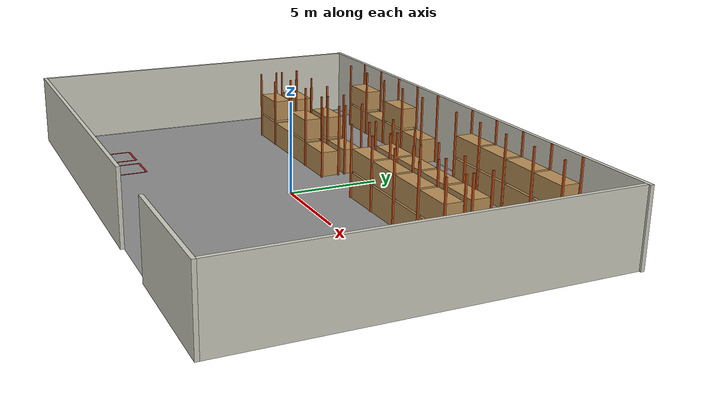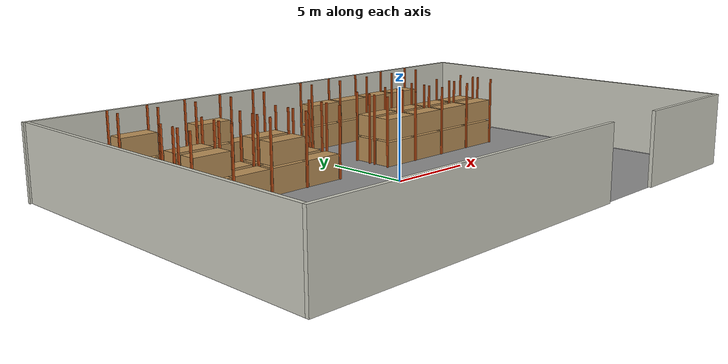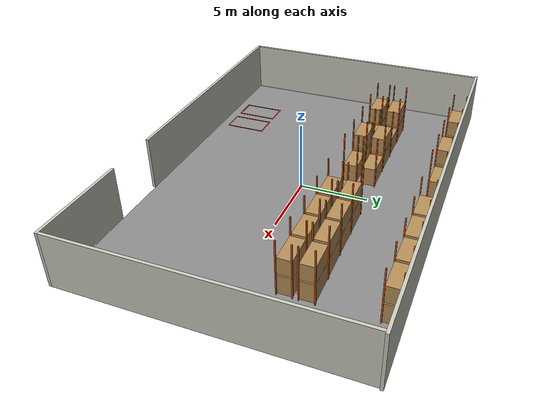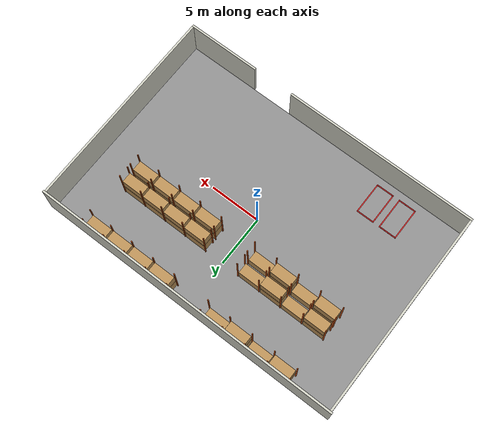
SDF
<sdf version="1.8">
 <world name="warehouse">
  <model name="Floor">
   <static>true</static>
   <link name="link">
    <collision name="collision">
     <geometry><plane><normal>0 0 1</normal><size>30 20</size></plane></geometry>
     <surface><friction><ode><mu>1.0</mu><mu2>1.0</mu2></ode></friction></surface>
    </collision>
    <visual name="visual">
     <geometry><plane><normal>0 0 1</normal><size>30 20</size></plane></geometry>
     <material><ambient>0.55 0.55 0.55 1</ambient><diffuse>0.55 0.55 0.55 1</diffuse></material>
    </visual>
   </link>
  </model>
  <model name="WallNorth">
   <static>true</static>
   <link name="link">
    <collision name="wallnorth_collision">
     <pose>0.000 10.100 2.000 0 0 0</pose>
     <geometry><box><size>30.600 0.200 4.000</size></box></geometry>
    </collision>
    <visual name="wallnorth_visual">
     <pose>0.000 10.100 2.000 0 0 0</pose>
     <geometry><box><size>30.600 0.200 4.000</size></box></geometry>
     <material><ambient>0.80 0.80 0.75 1</ambient><diffuse>0.80 0.80 0.75 1</diffuse></material>
    </visual>
   </link>
  </model>
  <model name="WallSouthWest">
   <static>true</static>
   <link name="link">
    <collision name="wallsouthwest_collision">
     <pose>-5.600 -10.100 2.000 0 0 0</pose>
     <geometry><box><size>19.200 0.200 4.000</size></box></geometry>
    </collision>
    <visual name="wallsouthwest_visual">
     <pose>-5.600 -10.100 2.000 0 0 0</pose>
     <geometry><box><size>19.200 0.200 4.000</size></box></geometry>
     <material><ambient>0.80 0.80 0.75 1</ambient><diffuse>0.80 0.80 0.75 1</diffuse></material>
    </visual>
   </link>
  </model>
  <model name="WallSouthEast">
   <static>true</static>
   <link name="link">
    <collision name="wallsoutheast_collision">
     <pose>11.600 -10.100 2.000 0 0 0</pose>
     <geometry><box><size>7.200 0.200 4.000</size></box></geometry>
    </collision>
    <visual name="wallsoutheast_visual">
     <pose>11.600 -10.100 2.000 0 0 0</pose>
     <geometry><box><size>7.200 0.200 4.000</size></box></geometry>
     <material><ambient>0.80 0.80 0.75 1</ambient><diffuse>0.80 0.80 0.75 1</diffuse></material>
    </visual>
   </link>
  </model>
  <model name="WallEast">
   <static>true</static>
   <link name="link">
    <collision name="walleast_collision">
     <pose>15.100 0.000 2.000 0 0 0</pose>
     <geometry><box><size>0.200 20.000 4.000</size></box></geometry>
    </collision>
    <visual name="walleast_visual">
     <pose>15.100 0.000 2.000 0 0 0</pose>
     <geometry><box><size>0.200 20.000 4.000</size></box></geometry>
     <material><ambient>0.80 0.80 0.75 1</ambient><diffuse>0.80 0.80 0.75 1</diffuse></material>
    </visual>
   </link>
  </model>
  <model name="WallWest">
   <static>true</static>
   <link name="link">
    <collision name="wallwest_collision">
     <pose>-15.100 0.000 2.000 0 0 0</pose>
     <geometry><box><size>0.200 20.000 4.000</size></box></geometry>
    </collision>
    <visual name="wallwest_visual">
     <pose>-15.100 0.000 2.000 0 0 0</pose>
     <geometry><box><size>0.200 20.000 4.000</size></box></geometry>
     <material><ambient>0.80 0.80 0.75 1</ambient><diffuse>0.80 0.80 0.75 1</diffuse></material>
    </visual>
   </link>
  </model>
  <model name="RackRowA_West">
   <static>true</static>
   <link name="link">
    <collision name="a_frame0_front_collision">
     <pose>-11.000 8.940 2.000 0 0 0</pose>
     <geometry><box><size>0.100 0.080 4.000</size></box></geometry>
    </collision>
    <visual name="a_frame0_front_visual">
     <pose>-11.000 8.940 2.000 0 0 0</pose>
     <geometry><box><size>0.100 0.080 4.000</size></box></geometry>
     <material><ambient>0.85 0.35 0.10 1</ambient><diffuse>0.85 0.35 0.10 1</diffuse></material>
    </visual>
    <collision name="a_frame0_rear_collision">
     <pose>-11.000 9.960 2.000 0 0 0</pose>
     <geometry><box><size>0.100 0.080 4.000</size></box></geometry>
    </collision>
    <visual name="a_frame0_rear_visual">
     <pose>-11.000 9.960 2.000 0 0 0</pose>
     <geometry><box><size>0.100 0.080 4.000</size></box></geometry>
     <material><ambient>0.85 0.35 0.10 1</ambient><diffuse>0.85 0.35 0.10 1</diffuse></material>
    </visual>
    <collision name="a_frame1_front_collision">
     <pose>-8.700 8.940 2.000 0 0 0</pose>
     <geometry><box><size>0.100 0.080 4.000</size></box></geometry>
    </collision>
    <visual name="a_frame1_front_visual">
     <pose>-8.700 8.940 2.000 0 0 0</pose>
     <geometry><box><size>0.100 0.080 4.000</size></box></geometry>
     <material><ambient>0.85 0.35 0.10 1</ambient><diffuse>0.85 0.35 0.10 1</diffuse></material>
    </visual>
    <collision name="a_frame1_rear_collision">
     <pose>-8.700 9.960 2.000 0 0 0</pose>
     <geometry><box><size>0.100 0.080 4.000</size></box></geometry>
    </collision>
    <visual name="a_frame1_rear_visual">
     <pose>-8.700 9.960 2.000 0 0 0</pose>
     <geometry><box><size>0.100 0.080 4.000</size></box></geometry>
     <material><ambient>0.85 0.35 0.10 1</ambient><diffuse>0.85 0.35 0.10 1</diffuse></material>
    </visual>
    <collision name="a_frame2_front_collision">
     <pose>-6.400 8.940 2.000 0 0 0</pose>
     <geometry><box><size>0.100 0.080 4.000</size></box></geometry>
    </collision>
    <visual name="a_frame2_front_visual">
     <pose>-6.400 8.940 2.000 0 0 0</pose>
     <geometry><box><size>0.100 0.080 4.000</size></box></geometry>
     <material><ambient>0.85 0.35 0.10 1</ambient><diffuse>0.85 0.35 0.10 1</diffuse></material>
    </visual>
    <collision name="a_frame2_rear_collision">
     <pose>-6.400 9.960 2.000 0 0 0</pose>
     <geometry><box><size>0.100 0.080 4.000</size></box></geometry>
    </collision>
    <visual name="a_frame2_rear_visual">
     <pose>-6.400 9.960 2.000 0 0 0</pose>
     <geometry><box><size>0.100 0.080 4.000</size></box></geometry>
     <material><ambient>0.85 0.35 0.10 1</ambient><diffuse>0.85 0.35 0.10 1</diffuse></material>
    </visual>
    <collision name="a_frame3_front_collision">
     <pose>-4.100 8.940 2.000 0 0 0</pose>
     <geometry><box><size>0.100 0.080 4.000</size></box></geometry>
    </collision>
    <visual name="a_frame3_front_visual">
     <pose>-4.100 8.940 2.000 0 0 0</pose>
     <geometry><box><size>0.100 0.080 4.000</size></box></geometry>
     <material><ambient>0.85 0.35 0.10 1</ambient><diffuse>0.85 0.35 0.10 1</diffuse></material>
    </visual>
    <collision name="a_frame3_rear_collision">
     <pose>-4.100 9.960 2.000 0 0 0</pose>
     <geometry><box><size>0.100 0.080 4.000</size></box></geometry>
    </collision>
    <visual name="a_frame3_rear_visual">
     <pose>-4.100 9.960 2.000 0 0 0</pose>
     <geometry><box><size>0.100 0.080 4.000</size></box></geometry>
     <material><ambient>0.85 0.35 0.10 1</ambient><diffuse>0.85 0.35 0.10 1</diffuse></material>
    </visual>
    <collision name="a_frame4_front_collision">
     <pose>-1.800 8.940 2.000 0 0 0</pose>
     <geometry><box><size>0.100 0.080 4.000</size></box></geometry>
    </collision>
    <visual name="a_frame4_front_visual">
     <pose>-1.800 8.940 2.000 0 0 0</pose>
     <geometry><box><size>0.100 0.080 4.000</size></box></geometry>
     <material><ambient>0.85 0.35 0.10 1</ambient><diffuse>0.85 0.35 0.10 1</diffuse></material>
    </visual>
    <collision name="a_frame4_rear_collision">
     <pose>-1.800 9.960 2.000 0 0 0</pose>
     <geometry><box><size>0.100 0.080 4.000</size></box></geometry>
    </collision>
    <visual name="a_frame4_rear_visual">
     <pose>-1.800 9.960 2.000 0 0 0</pose>
     <geometry><box><size>0.100 0.080 4.000</size></box></geometry>
     <material><ambient>0.85 0.35 0.10 1</ambient><diffuse>0.85 0.35 0.10 1</diffuse></material>
    </visual>
    <collision name="a_bay0_level1_collision">
     <pose>-9.850 9.450 0.700 0 0 0</pose>
     <geometry><box><size>2.100 1.000 1.400</size></box></geometry>
    </collision>
    <visual name="a_bay0_level1_visual">
     <pose>-9.850 9.450 0.700 0 0 0</pose>
     <geometry><box><size>2.100 1.000 1.400</size></box></geometry>
     <material><ambient>0.72 0.56 0.34 1</ambient><diffuse>0.72 0.56 0.34 1</diffuse></material>
    </visual>
    <collision name="a_bay0_level2_collision">
     <pose>-9.850 9.450 2.100 0 0 0</pose>
     <geometry><box><size>2.100 1.000 1.200</size></box></geometry>
    </collision>
    <visual name="a_bay0_level2_visual">
     <pose>-9.850 9.450 2.100 0 0 0</pose>
     <geometry><box><size>2.100 1.000 1.200</size></box></geometry>
     <material><ambient>0.72 0.56 0.34 1</ambient><diffuse>0.72 0.56 0.34 1</diffuse></material>
    </visual>
    <collision name="a_bay1_level1_collision">
     <pose>-7.550 9.450 0.700 0 0 0</pose>
     <geometry><box><size>2.100 1.000 1.400</size></box></geometry>
    </collision>
    <visual name="a_bay1_level1_visual">
     <pose>-7.550 9.450 0.700 0 0 0</pose>
     <geometry><box><size>2.100 1.000 1.400</size></box></geometry>
     <material><ambient>0.72 0.56 0.34 1</ambient><diffuse>0.72 0.56 0.34 1</diffuse></material>
    </visual>
    <collision name="a_bay2_level1_collision">
     <pose>-5.250 9.450 0.700 0 0 0</pose>
     <geometry><box><size>2.100 1.000 1.400</size></box></geometry>
    </collision>
    <visual name="a_bay2_level1_visual">
     <pose>-5.250 9.450 0.700 0 0 0</pose>
     <geometry><box><size>2.100 1.000 1.400</size></box></geometry>
     <material><ambient>0.72 0.56 0.34 1</ambient><diffuse>0.72 0.56 0.34 1</diffuse></material>
    </visual>
    <collision name="a_bay2_level2_collision">
     <pose>-5.250 9.450 2.100 0 0 0</pose>
     <geometry><box><size>2.100 1.000 1.200</size></box></geometry>
    </collision>
    <visual name="a_bay2_level2_visual">
     <pose>-5.250 9.450 2.100 0 0 0</pose>
     <geometry><box><size>2.100 1.000 1.200</size></box></geometry>
     <material><ambient>0.72 0.56 0.34 1</ambient><diffuse>0.72 0.56 0.34 1</diffuse></material>
    </visual>
    <collision name="a_bay3_level1_collision">
     <pose>-2.950 9.450 0.700 0 0 0</pose>
     <geometry><box><size>2.100 1.000 1.400</size></box></geometry>
    </collision>
    <visual name="a_bay3_level1_visual">
     <pose>-2.950 9.450 0.700 0 0 0</pose>
     <geometry><box><size>2.100 1.000 1.400</size></box></geometry>
     <material><ambient>0.72 0.56 0.34 1</ambient><diffuse>0.72 0.56 0.34 1</diffuse></material>
    </visual>
   </link>
  </model>
  <model name="RackRowA_East">
   <static>true</static>
   <link name="link">
    <collision name="a_frame0_front_collision">
     <pose>1.800 8.940 2.000 0 0 0</pose>
     <geometry><box><size>0.100 0.080 4.000</size></box></geometry>
    </collision>
    <visual name="a_frame0_front_visual">
     <pose>1.800 8.940 2.000 0 0 0</pose>
     <geometry><box><size>0.100 0.080 4.000</size></box></geometry>
     <material><ambient>0.85 0.35 0.10 1</ambient><diffuse>0.85 0.35 0.10 1</diffuse></material>
    </visual>
    <collision name="a_frame0_rear_collision">
     <pose>1.800 9.960 2.000 0 0 0</pose>
     <geometry><box><size>0.100 0.080 4.000</size></box></geometry>
    </collision>
    <visual name="a_frame0_rear_visual">
     <pose>1.800 9.960 2.000 0 0 0</pose>
     <geometry><box><size>0.100 0.080 4.000</size></box></geometry>
     <material><ambient>0.85 0.35 0.10 1</ambient><diffuse>0.85 0.35 0.10 1</diffuse></material>
    </visual>
    <collision name="a_frame1_front_collision">
     <pose>4.100 8.940 2.000 0 0 0</pose>
     <geometry><box><size>0.100 0.080 4.000</size></box></geometry>
    </collision>
    <visual name="a_frame1_front_visual">
     <pose>4.100 8.940 2.000 0 0 0</pose>
     <geometry><box><size>0.100 0.080 4.000</size></box></geometry>
     <material><ambient>0.85 0.35 0.10 1</ambient><diffuse>0.85 0.35 0.10 1</diffuse></material>
    </visual>
    <collision name="a_frame1_rear_collision">
     <pose>4.100 9.960 2.000 0 0 0</pose>
     <geometry><box><size>0.100 0.080 4.000</size></box></geometry>
    </collision>
    <visual name="a_frame1_rear_visual">
     <pose>4.100 9.960 2.000 0 0 0</pose>
     <geometry><box><size>0.100 0.080 4.000</size></box></geometry>
     <material><ambient>0.85 0.35 0.10 1</ambient><diffuse>0.85 0.35 0.10 1</diffuse></material>
    </visual>
    <collision name="a_frame2_front_collision">
     <pose>6.400 8.940 2.000 0 0 0</pose>
     <geometry><box><size>0.100 0.080 4.000</size></box></geometry>
    </collision>
    <visual name="a_frame2_front_visual">
     <pose>6.400 8.940 2.000 0 0 0</pose>
     <geometry><box><size>0.100 0.080 4.000</size></box></geometry>
     <material><ambient>0.85 0.35 0.10 1</ambient><diffuse>0.85 0.35 0.10 1</diffuse></material>
    </visual>
    <collision name="a_frame2_rear_collision">
     <pose>6.400 9.960 2.000 0 0 0</pose>
     <geometry><box><size>0.100 0.080 4.000</size></box></geometry>
    </collision>
    <visual name="a_frame2_rear_visual">
     <pose>6.400 9.960 2.000 0 0 0</pose>
     <geometry><box><size>0.100 0.080 4.000</size></box></geometry>
     <material><ambient>0.85 0.35 0.10 1</ambient><diffuse>0.85 0.35 0.10 1</diffuse></material>
    </visual>
    <collision name="a_frame3_front_collision">
     <pose>8.700 8.940 2.000 0 0 0</pose>
     <geometry><box><size>0.100 0.080 4.000</size></box></geometry>
    </collision>
    <visual name="a_frame3_front_visual">
     <pose>8.700 8.940 2.000 0 0 0</pose>
     <geometry><box><size>0.100 0.080 4.000</size></box></geometry>
     <material><ambient>0.85 0.35 0.10 1</ambient><diffuse>0.85 0.35 0.10 1</diffuse></material>
    </visual>
    <collision name="a_frame3_rear_collision">
     <pose>8.700 9.960 2.000 0 0 0</pose>
     <geometry><box><size>0.100 0.080 4.000</size></box></geometry>
    </collision>
    <visual name="a_frame3_rear_visual">
     <pose>8.700 9.960 2.000 0 0 0</pose>
     <geometry><box><size>0.100 0.080 4.000</size></box></geometry>
     <material><ambient>0.85 0.35 0.10 1</ambient><diffuse>0.85 0.35 0.10 1</diffuse></material>
    </visual>
    <collision name="a_frame4_front_collision">
     <pose>11.000 8.940 2.000 0 0 0</pose>
     <geometry><box><size>0.100 0.080 4.000</size></box></geometry>
    </collision>
    <visual name="a_frame4_front_visual">
     <pose>11.000 8.940 2.000 0 0 0</pose>
     <geometry><box><size>0.100 0.080 4.000</size></box></geometry>
     <material><ambient>0.85 0.35 0.10 1</ambient><diffuse>0.85 0.35 0.10 1</diffuse></material>
    </visual>
    <collision name="a_frame4_rear_collision">
     <pose>11.000 9.960 2.000 0 0 0</pose>
     <geometry><box><size>0.100 0.080 4.000</size></box></geometry>
    </collision>
    <visual name="a_frame4_rear_visual">
     <pose>11.000 9.960 2.000 0 0 0</pose>
     <geometry><box><size>0.100 0.080 4.000</size></box></geometry>
     <material><ambient>0.85 0.35 0.10 1</ambient><diffuse>0.85 0.35 0.10 1</diffuse></material>
    </visual>
    <collision name="a_bay0_level1_collision">
     <pose>2.950 9.450 0.700 0 0 0</pose>
     <geometry><box><size>2.100 1.000 1.400</size></box></geometry>
    </collision>
    <visual name="a_bay0_level1_visual">
     <pose>2.950 9.450 0.700 0 0 0</pose>
     <geometry><box><size>2.100 1.000 1.400</size></box></geometry>
     <material><ambient>0.72 0.56 0.34 1</ambient><diffuse>0.72 0.56 0.34 1</diffuse></material>
    </visual>
    <collision name="a_bay0_level2_collision">
     <pose>2.950 9.450 2.100 0 0 0</pose>
     <geometry><box><size>2.100 1.000 1.200</size></box></geometry>
    </collision>
    <visual name="a_bay0_level2_visual">
     <pose>2.950 9.450 2.100 0 0 0</pose>
     <geometry><box><size>2.100 1.000 1.200</size></box></geometry>
     <material><ambient>0.72 0.56 0.34 1</ambient><diffuse>0.72 0.56 0.34 1</diffuse></material>
    </visual>
    <collision name="a_bay1_level1_collision">
     <pose>5.250 9.450 0.700 0 0 0</pose>
     <geometry><box><size>2.100 1.000 1.400</size></box></geometry>
    </collision>
    <visual name="a_bay1_level1_visual">
     <pose>5.250 9.450 0.700 0 0 0</pose>
     <geometry><box><size>2.100 1.000 1.400</size></box></geometry>
     <material><ambient>0.72 0.56 0.34 1</ambient><diffuse>0.72 0.56 0.34 1</diffuse></material>
    </visual>
    <collision name="a_bay1_level2_collision">
     <pose>5.250 9.450 2.100 0 0 0</pose>
     <geometry><box><size>2.100 1.000 1.200</size></box></geometry>
    </collision>
    <visual name="a_bay1_level2_visual">
     <pose>5.250 9.450 2.100 0 0 0</pose>
     <geometry><box><size>2.100 1.000 1.200</size></box></geometry>
     <material><ambient>0.72 0.56 0.34 1</ambient><diffuse>0.72 0.56 0.34 1</diffuse></material>
    </visual>
    <collision name="a_bay2_level1_collision">
     <pose>7.550 9.450 0.700 0 0 0</pose>
     <geometry><box><size>2.100 1.000 1.400</size></box></geometry>
    </collision>
    <visual name="a_bay2_level1_visual">
     <pose>7.550 9.450 0.700 0 0 0</pose>
     <geometry><box><size>2.100 1.000 1.400</size></box></geometry>
     <material><ambient>0.72 0.56 0.34 1</ambient><diffuse>0.72 0.56 0.34 1</diffuse></material>
    </visual>
    <collision name="a_bay2_level2_collision">
     <pose>7.550 9.450 2.100 0 0 0</pose>
     <geometry><box><size>2.100 1.000 1.200</size></box></geometry>
    </collision>
    <visual name="a_bay2_level2_visual">
     <pose>7.550 9.450 2.100 0 0 0</pose>
     <geometry><box><size>2.100 1.000 1.200</size></box></geometry>
     <material><ambient>0.72 0.56 0.34 1</ambient><diffuse>0.72 0.56 0.34 1</diffuse></material>
    </visual>
    <collision name="a_bay3_level1_collision">
     <pose>9.850 9.450 0.700 0 0 0</pose>
     <geometry><box><size>2.100 1.000 1.400</size></box></geometry>
    </collision>
    <visual name="a_bay3_level1_visual">
     <pose>9.850 9.450 0.700 0 0 0</pose>
     <geometry><box><size>2.100 1.000 1.400</size></box></geometry>
     <material><ambient>0.72 0.56 0.34 1</ambient><diffuse>0.72 0.56 0.34 1</diffuse></material>
    </visual>
    <collision name="a_bay3_level2_collision">
     <pose>9.850 9.450 2.100 0 0 0</pose>
     <geometry><box><size>2.100 1.000 1.200</size></box></geometry>
    </collision>
    <visual name="a_bay3_level2_visual">
     <pose>9.850 9.450 2.100 0 0 0</pose>
     <geometry><box><size>2.100 1.000 1.200</size></box></geometry>
     <material><ambient>0.72 0.56 0.34 1</ambient><diffuse>0.72 0.56 0.34 1</diffuse></material>
    </visual>
   </link>
  </model>
  <model name="RackRowB_West">
   <static>true</static>
   <link name="link">
    <collision name="bn_frame0_front_collision">
     <pose>-11.000 5.060 2.000 0 0 0</pose>
     <geometry><box><size>0.100 0.080 4.000</size></box></geometry>
    </collision>
    <visual name="bn_frame0_front_visual">
     <pose>-11.000 5.060 2.000 0 0 0</pose>
     <geometry><box><size>0.100 0.080 4.000</size></box></geometry>
     <material><ambient>0.85 0.35 0.10 1</ambient><diffuse>0.85 0.35 0.10 1</diffuse></material>
    </visual>
    <collision name="bn_frame0_rear_collision">
     <pose>-11.000 4.040 2.000 0 0 0</pose>
     <geometry><box><size>0.100 0.080 4.000</size></box></geometry>
    </collision>
    <visual name="bn_frame0_rear_visual">
     <pose>-11.000 4.040 2.000 0 0 0</pose>
     <geometry><box><size>0.100 0.080 4.000</size></box></geometry>
     <material><ambient>0.85 0.35 0.10 1</ambient><diffuse>0.85 0.35 0.10 1</diffuse></material>
    </visual>
    <collision name="bn_frame1_front_collision">
     <pose>-8.700 5.060 2.000 0 0 0</pose>
     <geometry><box><size>0.100 0.080 4.000</size></box></geometry>
    </collision>
    <visual name="bn_frame1_front_visual">
     <pose>-8.700 5.060 2.000 0 0 0</pose>
     <geometry><box><size>0.100 0.080 4.000</size></box></geometry>
     <material><ambient>0.85 0.35 0.10 1</ambient><diffuse>0.85 0.35 0.10 1</diffuse></material>
    </visual>
    <collision name="bn_frame1_rear_collision">
     <pose>-8.700 4.040 2.000 0 0 0</pose>
     <geometry><box><size>0.100 0.080 4.000</size></box></geometry>
    </collision>
    <visual name="bn_frame1_rear_visual">
     <pose>-8.700 4.040 2.000 0 0 0</pose>
     <geometry><box><size>0.100 0.080 4.000</size></box></geometry>
     <material><ambient>0.85 0.35 0.10 1</ambient><diffuse>0.85 0.35 0.10 1</diffuse></material>
    </visual>
    <collision name="bn_frame2_front_collision">
     <pose>-6.400 5.060 2.000 0 0 0</pose>
     <geometry><box><size>0.100 0.080 4.000</size></box></geometry>
    </collision>
    <visual name="bn_frame2_front_visual">
     <pose>-6.400 5.060 2.000 0 0 0</pose>
     <geometry><box><size>0.100 0.080 4.000</size></box></geometry>
     <material><ambient>0.85 0.35 0.10 1</ambient><diffuse>0.85 0.35 0.10 1</diffuse></material>
    </visual>
    <collision name="bn_frame2_rear_collision">
     <pose>-6.400 4.040 2.000 0 0 0</pose>
     <geometry><box><size>0.100 0.080 4.000</size></box></geometry>
    </collision>
    <visual name="bn_frame2_rear_visual">
     <pose>-6.400 4.040 2.000 0 0 0</pose>
     <geometry><box><size>0.100 0.080 4.000</size></box></geometry>
     <material><ambient>0.85 0.35 0.10 1</ambient><diffuse>0.85 0.35 0.10 1</diffuse></material>
    </visual>
    <collision name="bn_frame3_front_collision">
     <pose>-4.100 5.060 2.000 0 0 0</pose>
     <geometry><box><size>0.100 0.080 4.000</size></box></geometry>
    </collision>
    <visual name="bn_frame3_front_visual">
     <pose>-4.100 5.060 2.000 0 0 0</pose>
     <geometry><box><size>0.100 0.080 4.000</size></box></geometry>
     <material><ambient>0.85 0.35 0.10 1</ambient><diffuse>0.85 0.35 0.10 1</diffuse></material>
    </visual>
    <collision name="bn_frame3_rear_collision">
     <pose>-4.100 4.040 2.000 0 0 0</pose>
     <geometry><box><size>0.100 0.080 4.000</size></box></geometry>
    </collision>
    <visual name="bn_frame3_rear_visual">
     <pose>-4.100 4.040 2.000 0 0 0</pose>
     <geometry><box><size>0.100 0.080 4.000</size></box></geometry>
     <material><ambient>0.85 0.35 0.10 1</ambient><diffuse>0.85 0.35 0.10 1</diffuse></material>
    </visual>
    <collision name="bn_frame4_front_collision">
     <pose>-1.800 5.060 2.000 0 0 0</pose>
     <geometry><box><size>0.100 0.080 4.000</size></box></geometry>
    </collision>
    <visual name="bn_frame4_front_visual">
     <pose>-1.800 5.060 2.000 0 0 0</pose>
     <geometry><box><size>0.100 0.080 4.000</size></box></geometry>
     <material><ambient>0.85 0.35 0.10 1</ambient><diffuse>0.85 0.35 0.10 1</diffuse></material>
    </visual>
    <collision name="bn_frame4_rear_collision">
     <pose>-1.800 4.040 2.000 0 0 0</pose>
     <geometry><box><size>0.100 0.080 4.000</size></box></geometry>
    </collision>
    <visual name="bn_frame4_rear_visual">
     <pose>-1.800 4.040 2.000 0 0 0</pose>
     <geometry><box><size>0.100 0.080 4.000</size></box></geometry>
     <material><ambient>0.85 0.35 0.10 1</ambient><diffuse>0.85 0.35 0.10 1</diffuse></material>
    </visual>
    <collision name="bn_bay0_level1_collision">
     <pose>-9.850 4.550 0.700 0 0 0</pose>
     <geometry><box><size>2.100 1.000 1.400</size></box></geometry>
    </collision>
    <visual name="bn_bay0_level1_visual">
     <pose>-9.850 4.550 0.700 0 0 0</pose>
     <geometry><box><size>2.100 1.000 1.400</size></box></geometry>
     <material><ambient>0.72 0.56 0.34 1</ambient><diffuse>0.72 0.56 0.34 1</diffuse></material>
    </visual>
    <collision name="bn_bay0_level2_collision">
     <pose>-9.850 4.550 2.100 0 0 0</pose>
     <geometry><box><size>2.100 1.000 1.200</size></box></geometry>
    </collision>
    <visual name="bn_bay0_level2_visual">
     <pose>-9.850 4.550 2.100 0 0 0</pose>
     <geometry><box><size>2.100 1.000 1.200</size></box></geometry>
     <material><ambient>0.72 0.56 0.34 1</ambient><diffuse>0.72 0.56 0.34 1</diffuse></material>
    </visual>
    <collision name="bn_bay1_level1_collision">
     <pose>-7.550 4.550 0.700 0 0 0</pose>
     <geometry><box><size>2.100 1.000 1.400</size></box></geometry>
    </collision>
    <visual name="bn_bay1_level1_visual">
     <pose>-7.550 4.550 0.700 0 0 0</pose>
     <geometry><box><size>2.100 1.000 1.400</size></box></geometry>
     <material><ambient>0.72 0.56 0.34 1</ambient><diffuse>0.72 0.56 0.34 1</diffuse></material>
    </visual>
    <collision name="bn_bay2_level1_collision">
     <pose>-5.250 4.550 0.700 0 0 0</pose>
     <geometry><box><size>2.100 1.000 1.400</size></box></geometry>
    </collision>
    <visual name="bn_bay2_level1_visual">
     <pose>-5.250 4.550 0.700 0 0 0</pose>
     <geometry><box><size>2.100 1.000 1.400</size></box></geometry>
     <material><ambient>0.72 0.56 0.34 1</ambient><diffuse>0.72 0.56 0.34 1</diffuse></material>
    </visual>
    <collision name="bn_bay2_level2_collision">
     <pose>-5.250 4.550 2.100 0 0 0</pose>
     <geometry><box><size>2.100 1.000 1.200</size></box></geometry>
    </collision>
    <visual name="bn_bay2_level2_visual">
     <pose>-5.250 4.550 2.100 0 0 0</pose>
     <geometry><box><size>2.100 1.000 1.200</size></box></geometry>
     <material><ambient>0.72 0.56 0.34 1</ambient><diffuse>0.72 0.56 0.34 1</diffuse></material>
    </visual>
    <collision name="bn_bay3_level1_collision">
     <pose>-2.950 4.550 0.700 0 0 0</pose>
     <geometry><box><size>2.100 1.000 1.400</size></box></geometry>
    </collision>
    <visual name="bn_bay3_level1_visual">
     <pose>-2.950 4.550 0.700 0 0 0</pose>
     <geometry><box><size>2.100 1.000 1.400</size></box></geometry>
     <material><ambient>0.72 0.56 0.34 1</ambient><diffuse>0.72 0.56 0.34 1</diffuse></material>
    </visual>
    <collision name="bs_frame0_front_collision">
     <pose>-11.000 2.640 2.000 0 0 0</pose>
     <geometry><box><size>0.100 0.080 4.000</size></box></geometry>
    </collision>
    <visual name="bs_frame0_front_visual">
     <pose>-11.000 2.640 2.000 0 0 0</pose>
     <geometry><box><size>0.100 0.080 4.000</size></box></geometry>
     <material><ambient>0.85 0.35 0.10 1</ambient><diffuse>0.85 0.35 0.10 1</diffuse></material>
    </visual>
    <collision name="bs_frame0_rear_collision">
     <pose>-11.000 3.660 2.000 0 0 0</pose>
     <geometry><box><size>0.100 0.080 4.000</size></box></geometry>
    </collision>
    <visual name="bs_frame0_rear_visual">
     <pose>-11.000 3.660 2.000 0 0 0</pose>
     <geometry><box><size>0.100 0.080 4.000</size></box></geometry>
     <material><ambient>0.85 0.35 0.10 1</ambient><diffuse>0.85 0.35 0.10 1</diffuse></material>
    </visual>
    <collision name="bs_frame1_front_collision">
     <pose>-8.700 2.640 2.000 0 0 0</pose>
     <geometry><box><size>0.100 0.080 4.000</size></box></geometry>
    </collision>
    <visual name="bs_frame1_front_visual">
     <pose>-8.700 2.640 2.000 0 0 0</pose>
     <geometry><box><size>0.100 0.080 4.000</size></box></geometry>
     <material><ambient>0.85 0.35 0.10 1</ambient><diffuse>0.85 0.35 0.10 1</diffuse></material>
    </visual>
    <collision name="bs_frame1_rear_collision">
     <pose>-8.700 3.660 2.000 0 0 0</pose>
     <geometry><box><size>0.100 0.080 4.000</size></box></geometry>
    </collision>
    <visual name="bs_frame1_rear_visual">
     <pose>-8.700 3.660 2.000 0 0 0</pose>
     <geometry><box><size>0.100 0.080 4.000</size></box></geometry>
     <material><ambient>0.85 0.35 0.10 1</ambient><diffuse>0.85 0.35 0.10 1</diffuse></material>
    </visual>
    <collision name="bs_frame2_front_collision">
     <pose>-6.400 2.640 2.000 0 0 0</pose>
     <geometry><box><size>0.100 0.080 4.000</size></box></geometry>
    </collision>
    <visual name="bs_frame2_front_visual">
     <pose>-6.400 2.640 2.000 0 0 0</pose>
     <geometry><box><size>0.100 0.080 4.000</size></box></geometry>
     <material><ambient>0.85 0.35 0.10 1</ambient><diffuse>0.85 0.35 0.10 1</diffuse></material>
    </visual>
    <collision name="bs_frame2_rear_collision">
     <pose>-6.400 3.660 2.000 0 0 0</pose>
     <geometry><box><size>0.100 0.080 4.000</size></box></geometry>
    </collision>
    <visual name="bs_frame2_rear_visual">
     <pose>-6.400 3.660 2.000 0 0 0</pose>
     <geometry><box><size>0.100 0.080 4.000</size></box></geometry>
     <material><ambient>0.85 0.35 0.10 1</ambient><diffuse>0.85 0.35 0.10 1</diffuse></material>
    </visual>
    <collision name="bs_frame3_front_collision">
     <pose>-4.100 2.640 2.000 0 0 0</pose>
     <geometry><box><size>0.100 0.080 4.000</size></box></geometry>
    </collision>
    <visual name="bs_frame3_front_visual">
     <pose>-4.100 2.640 2.000 0 0 0</pose>
     <geometry><box><size>0.100 0.080 4.000</size></box></geometry>
     <material><ambient>0.85 0.35 0.10 1</ambient><diffuse>0.85 0.35 0.10 1</diffuse></material>
    </visual>
    <collision name="bs_frame3_rear_collision">
     <pose>-4.100 3.660 2.000 0 0 0</pose>
     <geometry><box><size>0.100 0.080 4.000</size></box></geometry>
    </collision>
    <visual name="bs_frame3_rear_visual">
     <pose>-4.100 3.660 2.000 0 0 0</pose>
     <geometry><box><size>0.100 0.080 4.000</size></box></geometry>
     <material><ambient>0.85 0.35 0.10 1</ambient><diffuse>0.85 0.35 0.10 1</diffuse></material>
    </visual>
    <collision name="bs_frame4_front_collision">
     <pose>-1.800 2.640 2.000 0 0 0</pose>
     <geometry><box><size>0.100 0.080 4.000</size></box></geometry>
    </collision>
    <visual name="bs_frame4_front_visual">
     <pose>-1.800 2.640 2.000 0 0 0</pose>
     <geometry><box><size>0.100 0.080 4.000</size></box></geometry>
     <material><ambient>0.85 0.35 0.10 1</ambient><diffuse>0.85 0.35 0.10 1</diffuse></material>
    </visual>
    <collision name="bs_frame4_rear_collision">
     <pose>-1.800 3.660 2.000 0 0 0</pose>
     <geometry><box><size>0.100 0.080 4.000</size></box></geometry>
    </collision>
    <visual name="bs_frame4_rear_visual">
     <pose>-1.800 3.660 2.000 0 0 0</pose>
     <geometry><box><size>0.100 0.080 4.000</size></box></geometry>
     <material><ambient>0.85 0.35 0.10 1</ambient><diffuse>0.85 0.35 0.10 1</diffuse></material>
    </visual>
    <collision name="bs_bay0_level1_collision">
     <pose>-9.850 3.150 0.700 0 0 0</pose>
     <geometry><box><size>2.100 1.000 1.400</size></box></geometry>
    </collision>
    <visual name="bs_bay0_level1_visual">
     <pose>-9.850 3.150 0.700 0 0 0</pose>
     <geometry><box><size>2.100 1.000 1.400</size></box></geometry>
     <material><ambient>0.72 0.56 0.34 1</ambient><diffuse>0.72 0.56 0.34 1</diffuse></material>
    </visual>
    <collision name="bs_bay0_level2_collision">
     <pose>-9.850 3.150 2.100 0 0 0</pose>
     <geometry><box><size>2.100 1.000 1.200</size></box></geometry>
    </collision>
    <visual name="bs_bay0_level2_visual">
     <pose>-9.850 3.150 2.100 0 0 0</pose>
     <geometry><box><size>2.100 1.000 1.200</size></box></geometry>
     <material><ambient>0.72 0.56 0.34 1</ambient><diffuse>0.72 0.56 0.34 1</diffuse></material>
    </visual>
    <collision name="bs_bay1_level1_collision">
     <pose>-7.550 3.150 0.700 0 0 0</pose>
     <geometry><box><size>2.100 1.000 1.400</size></box></geometry>
    </collision>
    <visual name="bs_bay1_level1_visual">
     <pose>-7.550 3.150 0.700 0 0 0</pose>
     <geometry><box><size>2.100 1.000 1.400</size></box></geometry>
     <material><ambient>0.72 0.56 0.34 1</ambient><diffuse>0.72 0.56 0.34 1</diffuse></material>
    </visual>
    <collision name="bs_bay2_level1_collision">
     <pose>-5.250 3.150 0.700 0 0 0</pose>
     <geometry><box><size>2.100 1.000 1.400</size></box></geometry>
    </collision>
    <visual name="bs_bay2_level1_visual">
     <pose>-5.250 3.150 0.700 0 0 0</pose>
     <geometry><box><size>2.100 1.000 1.400</size></box></geometry>
     <material><ambient>0.72 0.56 0.34 1</ambient><diffuse>0.72 0.56 0.34 1</diffuse></material>
    </visual>
    <collision name="bs_bay2_level2_collision">
     <pose>-5.250 3.150 2.100 0 0 0</pose>
     <geometry><box><size>2.100 1.000 1.200</size></box></geometry>
    </collision>
    <visual name="bs_bay2_level2_visual">
     <pose>-5.250 3.150 2.100 0 0 0</pose>
     <geometry><box><size>2.100 1.000 1.200</size></box></geometry>
     <material><ambient>0.72 0.56 0.34 1</ambient><diffuse>0.72 0.56 0.34 1</diffuse></material>
    </visual>
    <collision name="bs_bay3_level1_collision">
     <pose>-2.950 3.150 0.700 0 0 0</pose>
     <geometry><box><size>2.100 1.000 1.400</size></box></geometry>
    </collision>
    <visual name="bs_bay3_level1_visual">
     <pose>-2.950 3.150 0.700 0 0 0</pose>
     <geometry><box><size>2.100 1.000 1.400</size></box></geometry>
     <material><ambient>0.72 0.56 0.34 1</ambient><diffuse>0.72 0.56 0.34 1</diffuse></material>
    </visual>
   </link>
  </model>
  <model name="RackRowB_East">
   <static>true</static>
   <link name="link">
    <collision name="bn_frame0_front_collision">
     <pose>1.800 5.060 2.000 0 0 0</pose>
     <geometry><box><size>0.100 0.080 4.000</size></box></geometry>
    </collision>
    <visual name="bn_frame0_front_visual">
     <pose>1.800 5.060 2.000 0 0 0</pose>
     <geometry><box><size>0.100 0.080 4.000</size></box></geometry>
     <material><ambient>0.85 0.35 0.10 1</ambient><diffuse>0.85 0.35 0.10 1</diffuse></material>
    </visual>
    <collision name="bn_frame0_rear_collision">
     <pose>1.800 4.040 2.000 0 0 0</pose>
     <geometry><box><size>0.100 0.080 4.000</size></box></geometry>
    </collision>
    <visual name="bn_frame0_rear_visual">
     <pose>1.800 4.040 2.000 0 0 0</pose>
     <geometry><box><size>0.100 0.080 4.000</size></box></geometry>
     <material><ambient>0.85 0.35 0.10 1</ambient><diffuse>0.85 0.35 0.10 1</diffuse></material>
    </visual>
    <collision name="bn_frame1_front_collision">
     <pose>4.100 5.060 2.000 0 0 0</pose>
     <geometry><box><size>0.100 0.080 4.000</size></box></geometry>
    </collision>
    <visual name="bn_frame1_front_visual">
     <pose>4.100 5.060 2.000 0 0 0</pose>
     <geometry><box><size>0.100 0.080 4.000</size></box></geometry>
     <material><ambient>0.85 0.35 0.10 1</ambient><diffuse>0.85 0.35 0.10 1</diffuse></material>
    </visual>
    <collision name="bn_frame1_rear_collision">
     <pose>4.100 4.040 2.000 0 0 0</pose>
     <geometry><box><size>0.100 0.080 4.000</size></box></geometry>
    </collision>
    <visual name="bn_frame1_rear_visual">
     <pose>4.100 4.040 2.000 0 0 0</pose>
     <geometry><box><size>0.100 0.080 4.000</size></box></geometry>
     <material><ambient>0.85 0.35 0.10 1</ambient><diffuse>0.85 0.35 0.10 1</diffuse></material>
    </visual>
    <collision name="bn_frame2_front_collision">
     <pose>6.400 5.060 2.000 0 0 0</pose>
     <geometry><box><size>0.100 0.080 4.000</size></box></geometry>
    </collision>
    <visual name="bn_frame2_front_visual">
     <pose>6.400 5.060 2.000 0 0 0</pose>
     <geometry><box><size>0.100 0.080 4.000</size></box></geometry>
     <material><ambient>0.85 0.35 0.10 1</ambient><diffuse>0.85 0.35 0.10 1</diffuse></material>
    </visual>
    <collision name="bn_frame2_rear_collision">
     <pose>6.400 4.040 2.000 0 0 0</pose>
     <geometry><box><size>0.100 0.080 4.000</size></box></geometry>
    </collision>
    <visual name="bn_frame2_rear_visual">
     <pose>6.400 4.040 2.000 0 0 0</pose>
     <geometry><box><size>0.100 0.080 4.000</size></box></geometry>
     <material><ambient>0.85 0.35 0.10 1</ambient><diffuse>0.85 0.35 0.10 1</diffuse></material>
    </visual>
    <collision name="bn_frame3_front_collision">
     <pose>8.700 5.060 2.000 0 0 0</pose>
     <geometry><box><size>0.100 0.080 4.000</size></box></geometry>
    </collision>
    <visual name="bn_frame3_front_visual">
     <pose>8.700 5.060 2.000 0 0 0</pose>
     <geometry><box><size>0.100 0.080 4.000</size></box></geometry>
     <material><ambient>0.85 0.35 0.10 1</ambient><diffuse>0.85 0.35 0.10 1</diffuse></material>
    </visual>
    <collision name="bn_frame3_rear_collision">
     <pose>8.700 4.040 2.000 0 0 0</pose>
     <geometry><box><size>0.100 0.080 4.000</size></box></geometry>
    </collision>
    <visual name="bn_frame3_rear_visual">
     <pose>8.700 4.040 2.000 0 0 0</pose>
     <geometry><box><size>0.100 0.080 4.000</size></box></geometry>
     <material><ambient>0.85 0.35 0.10 1</ambient><diffuse>0.85 0.35 0.10 1</diffuse></material>
    </visual>
    <collision name="bn_frame4_front_collision">
     <pose>11.000 5.060 2.000 0 0 0</pose>
     <geometry><box><size>0.100 0.080 4.000</size></box></geometry>
    </collision>
    <visual name="bn_frame4_front_visual">
     <pose>11.000 5.060 2.000 0 0 0</pose>
     <geometry><box><size>0.100 0.080 4.000</size></box></geometry>
     <material><ambient>0.85 0.35 0.10 1</ambient><diffuse>0.85 0.35 0.10 1</diffuse></material>
    </visual>
    <collision name="bn_frame4_rear_collision">
     <pose>11.000 4.040 2.000 0 0 0</pose>
     <geometry><box><size>0.100 0.080 4.000</size></box></geometry>
    </collision>
    <visual name="bn_frame4_rear_visual">
     <pose>11.000 4.040 2.000 0 0 0</pose>
     <geometry><box><size>0.100 0.080 4.000</size></box></geometry>
     <material><ambient>0.85 0.35 0.10 1</ambient><diffuse>0.85 0.35 0.10 1</diffuse></material>
    </visual>
    <collision name="bn_bay0_level1_collision">
     <pose>2.950 4.550 0.700 0 0 0</pose>
     <geometry><box><size>2.100 1.000 1.400</size></box></geometry>
    </collision>
    <visual name="bn_bay0_level1_visual">
     <pose>2.950 4.550 0.700 0 0 0</pose>
     <geometry><box><size>2.100 1.000 1.400</size></box></geometry>
     <material><ambient>0.72 0.56 0.34 1</ambient><diffuse>0.72 0.56 0.34 1</diffuse></material>
    </visual>
    <collision name="bn_bay0_level2_collision">
     <pose>2.950 4.550 2.100 0 0 0</pose>
     <geometry><box><size>2.100 1.000 1.200</size></box></geometry>
    </collision>
    <visual name="bn_bay0_level2_visual">
     <pose>2.950 4.550 2.100 0 0 0</pose>
     <geometry><box><size>2.100 1.000 1.200</size></box></geometry>
     <material><ambient>0.72 0.56 0.34 1</ambient><diffuse>0.72 0.56 0.34 1</diffuse></material>
    </visual>
    <collision name="bn_bay1_level1_collision">
     <pose>5.250 4.550 0.700 0 0 0</pose>
     <geometry><box><size>2.100 1.000 1.400</size></box></geometry>
    </collision>
    <visual name="bn_bay1_level1_visual">
     <pose>5.250 4.550 0.700 0 0 0</pose>
     <geometry><box><size>2.100 1.000 1.400</size></box></geometry>
     <material><ambient>0.72 0.56 0.34 1</ambient><diffuse>0.72 0.56 0.34 1</diffuse></material>
    </visual>
    <collision name="bn_bay1_level2_collision">
     <pose>5.250 4.550 2.100 0 0 0</pose>
     <geometry><box><size>2.100 1.000 1.200</size></box></geometry>
    </collision>
    <visual name="bn_bay1_level2_visual">
     <pose>5.250 4.550 2.100 0 0 0</pose>
     <geometry><box><size>2.100 1.000 1.200</size></box></geometry>
     <material><ambient>0.72 0.56 0.34 1</ambient><diffuse>0.72 0.56 0.34 1</diffuse></material>
    </visual>
    <collision name="bn_bay2_level1_collision">
     <pose>7.550 4.550 0.700 0 0 0</pose>
     <geometry><box><size>2.100 1.000 1.400</size></box></geometry>
    </collision>
    <visual name="bn_bay2_level1_visual">
     <pose>7.550 4.550 0.700 0 0 0</pose>
     <geometry><box><size>2.100 1.000 1.400</size></box></geometry>
     <material><ambient>0.72 0.56 0.34 1</ambient><diffuse>0.72 0.56 0.34 1</diffuse></material>
    </visual>
    <collision name="bn_bay2_level2_collision">
     <pose>7.550 4.550 2.100 0 0 0</pose>
     <geometry><box><size>2.100 1.000 1.200</size></box></geometry>
    </collision>
    <visual name="bn_bay2_level2_visual">
     <pose>7.550 4.550 2.100 0 0 0</pose>
     <geometry><box><size>2.100 1.000 1.200</size></box></geometry>
     <material><ambient>0.72 0.56 0.34 1</ambient><diffuse>0.72 0.56 0.34 1</diffuse></material>
    </visual>
    <collision name="bn_bay3_level1_collision">
     <pose>9.850 4.550 0.700 0 0 0</pose>
     <geometry><box><size>2.100 1.000 1.400</size></box></geometry>
    </collision>
    <visual name="bn_bay3_level1_visual">
     <pose>9.850 4.550 0.700 0 0 0</pose>
     <geometry><box><size>2.100 1.000 1.400</size></box></geometry>
     <material><ambient>0.72 0.56 0.34 1</ambient><diffuse>0.72 0.56 0.34 1</diffuse></material>
    </visual>
    <collision name="bn_bay3_level2_collision">
     <pose>9.850 4.550 2.100 0 0 0</pose>
     <geometry><box><size>2.100 1.000 1.200</size></box></geometry>
    </collision>
    <visual name="bn_bay3_level2_visual">
     <pose>9.850 4.550 2.100 0 0 0</pose>
     <geometry><box><size>2.100 1.000 1.200</size></box></geometry>
     <material><ambient>0.72 0.56 0.34 1</ambient><diffuse>0.72 0.56 0.34 1</diffuse></material>
    </visual>
    <collision name="bs_frame0_front_collision">
     <pose>1.800 2.640 2.000 0 0 0</pose>
     <geometry><box><size>0.100 0.080 4.000</size></box></geometry>
    </collision>
    <visual name="bs_frame0_front_visual">
     <pose>1.800 2.640 2.000 0 0 0</pose>
     <geometry><box><size>0.100 0.080 4.000</size></box></geometry>
     <material><ambient>0.85 0.35 0.10 1</ambient><diffuse>0.85 0.35 0.10 1</diffuse></material>
    </visual>
    <collision name="bs_frame0_rear_collision">
     <pose>1.800 3.660 2.000 0 0 0</pose>
     <geometry><box><size>0.100 0.080 4.000</size></box></geometry>
    </collision>
    <visual name="bs_frame0_rear_visual">
     <pose>1.800 3.660 2.000 0 0 0</pose>
     <geometry><box><size>0.100 0.080 4.000</size></box></geometry>
     <material><ambient>0.85 0.35 0.10 1</ambient><diffuse>0.85 0.35 0.10 1</diffuse></material>
    </visual>
    <collision name="bs_frame1_front_collision">
     <pose>4.100 2.640 2.000 0 0 0</pose>
     <geometry><box><size>0.100 0.080 4.000</size></box></geometry>
    </collision>
    <visual name="bs_frame1_front_visual">
     <pose>4.100 2.640 2.000 0 0 0</pose>
     <geometry><box><size>0.100 0.080 4.000</size></box></geometry>
     <material><ambient>0.85 0.35 0.10 1</ambient><diffuse>0.85 0.35 0.10 1</diffuse></material>
    </visual>
    <collision name="bs_frame1_rear_collision">
     <pose>4.100 3.660 2.000 0 0 0</pose>
     <geometry><box><size>0.100 0.080 4.000</size></box></geometry>
    </collision>
    <visual name="bs_frame1_rear_visual">
     <pose>4.100 3.660 2.000 0 0 0</pose>
     <geometry><box><size>0.100 0.080 4.000</size></box></geometry>
     <material><ambient>0.85 0.35 0.10 1</ambient><diffuse>0.85 0.35 0.10 1</diffuse></material>
    </visual>
    <collision name="bs_frame2_front_collision">
     <pose>6.400 2.640 2.000 0 0 0</pose>
     <geometry><box><size>0.100 0.080 4.000</size></box></geometry>
    </collision>
    <visual name="bs_frame2_front_visual">
     <pose>6.400 2.640 2.000 0 0 0</pose>
     <geometry><box><size>0.100 0.080 4.000</size></box></geometry>
     <material><ambient>0.85 0.35 0.10 1</ambient><diffuse>0.85 0.35 0.10 1</diffuse></material>
    </visual>
    <collision name="bs_frame2_rear_collision">
     <pose>6.400 3.660 2.000 0 0 0</pose>
     <geometry><box><size>0.100 0.080 4.000</size></box></geometry>
    </collision>
    <visual name="bs_frame2_rear_visual">
     <pose>6.400 3.660 2.000 0 0 0</pose>
     <geometry><box><size>0.100 0.080 4.000</size></box></geometry>
     <material><ambient>0.85 0.35 0.10 1</ambient><diffuse>0.85 0.35 0.10 1</diffuse></material>
    </visual>
    <collision name="bs_frame3_front_collision">
     <pose>8.700 2.640 2.000 0 0 0</pose>
     <geometry><box><size>0.100 0.080 4.000</size></box></geometry>
    </collision>
    <visual name="bs_frame3_front_visual">
     <pose>8.700 2.640 2.000 0 0 0</pose>
     <geometry><box><size>0.100 0.080 4.000</size></box></geometry>
     <material><ambient>0.85 0.35 0.10 1</ambient><diffuse>0.85 0.35 0.10 1</diffuse></material>
    </visual>
    <collision name="bs_frame3_rear_collision">
     <pose>8.700 3.660 2.000 0 0 0</pose>
     <geometry><box><size>0.100 0.080 4.000</size></box></geometry>
    </collision>
    <visual name="bs_frame3_rear_visual">
     <pose>8.700 3.660 2.000 0 0 0</pose>
     <geometry><box><size>0.100 0.080 4.000</size></box></geometry>
     <material><ambient>0.85 0.35 0.10 1</ambient><diffuse>0.85 0.35 0.10 1</diffuse></material>
    </visual>
    <collision name="bs_frame4_front_collision">
     <pose>11.000 2.640 2.000 0 0 0</pose>
     <geometry><box><size>0.100 0.080 4.000</size></box></geometry>
    </collision>
    <visual name="bs_frame4_front_visual">
     <pose>11.000 2.640 2.000 0 0 0</pose>
     <geometry><box><size>0.100 0.080 4.000</size></box></geometry>
     <material><ambient>0.85 0.35 0.10 1</ambient><diffuse>0.85 0.35 0.10 1</diffuse></material>
    </visual>
    <collision name="bs_frame4_rear_collision">
     <pose>11.000 3.660 2.000 0 0 0</pose>
     <geometry><box><size>0.100 0.080 4.000</size></box></geometry>
    </collision>
    <visual name="bs_frame4_rear_visual">
     <pose>11.000 3.660 2.000 0 0 0</pose>
     <geometry><box><size>0.100 0.080 4.000</size></box></geometry>
     <material><ambient>0.85 0.35 0.10 1</ambient><diffuse>0.85 0.35 0.10 1</diffuse></material>
    </visual>
    <collision name="bs_bay0_level1_collision">
     <pose>2.950 3.150 0.700 0 0 0</pose>
     <geometry><box><size>2.100 1.000 1.400</size></box></geometry>
    </collision>
    <visual name="bs_bay0_level1_visual">
     <pose>2.950 3.150 0.700 0 0 0</pose>
     <geometry><box><size>2.100 1.000 1.400</size></box></geometry>
     <material><ambient>0.72 0.56 0.34 1</ambient><diffuse>0.72 0.56 0.34 1</diffuse></material>
    </visual>
    <collision name="bs_bay0_level2_collision">
     <pose>2.950 3.150 2.100 0 0 0</pose>
     <geometry><box><size>2.100 1.000 1.200</size></box></geometry>
    </collision>
    <visual name="bs_bay0_level2_visual">
     <pose>2.950 3.150 2.100 0 0 0</pose>
     <geometry><box><size>2.100 1.000 1.200</size></box></geometry>
     <material><ambient>0.72 0.56 0.34 1</ambient><diffuse>0.72 0.56 0.34 1</diffuse></material>
    </visual>
    <collision name="bs_bay1_level1_collision">
     <pose>5.250 3.150 0.700 0 0 0</pose>
     <geometry><box><size>2.100 1.000 1.400</size></box></geometry>
    </collision>
    <visual name="bs_bay1_level1_visual">
     <pose>5.250 3.150 0.700 0 0 0</pose>
     <geometry><box><size>2.100 1.000 1.400</size></box></geometry>
     <material><ambient>0.72 0.56 0.34 1</ambient><diffuse>0.72 0.56 0.34 1</diffuse></material>
    </visual>
    <collision name="bs_bay1_level2_collision">
     <pose>5.250 3.150 2.100 0 0 0</pose>
     <geometry><box><size>2.100 1.000 1.200</size></box></geometry>
    </collision>
    <visual name="bs_bay1_level2_visual">
     <pose>5.250 3.150 2.100 0 0 0</pose>
     <geometry><box><size>2.100 1.000 1.200</size></box></geometry>
     <material><ambient>0.72 0.56 0.34 1</ambient><diffuse>0.72 0.56 0.34 1</diffuse></material>
    </visual>
    <collision name="bs_bay2_level1_collision">
     <pose>7.550 3.150 0.700 0 0 0</pose>
     <geometry><box><size>2.100 1.000 1.400</size></box></geometry>
    </collision>
    <visual name="bs_bay2_level1_visual">
     <pose>7.550 3.150 0.700 0 0 0</pose>
     <geometry><box><size>2.100 1.000 1.400</size></box></geometry>
     <material><ambient>0.72 0.56 0.34 1</ambient><diffuse>0.72 0.56 0.34 1</diffuse></material>
    </visual>
    <collision name="bs_bay2_level2_collision">
     <pose>7.550 3.150 2.100 0 0 0</pose>
     <geometry><box><size>2.100 1.000 1.200</size></box></geometry>
    </collision>
    <visual name="bs_bay2_level2_visual">
     <pose>7.550 3.150 2.100 0 0 0</pose>
     <geometry><box><size>2.100 1.000 1.200</size></box></geometry>
     <material><ambient>0.72 0.56 0.34 1</ambient><diffuse>0.72 0.56 0.34 1</diffuse></material>
    </visual>
    <collision name="bs_bay3_level1_collision">
     <pose>9.850 3.150 0.700 0 0 0</pose>
     <geometry><box><size>2.100 1.000 1.400</size></box></geometry>
    </collision>
    <visual name="bs_bay3_level1_visual">
     <pose>9.850 3.150 0.700 0 0 0</pose>
     <geometry><box><size>2.100 1.000 1.400</size></box></geometry>
     <material><ambient>0.72 0.56 0.34 1</ambient><diffuse>0.72 0.56 0.34 1</diffuse></material>
    </visual>
    <collision name="bs_bay3_level2_collision">
     <pose>9.850 3.150 2.100 0 0 0</pose>
     <geometry><box><size>2.100 1.000 1.200</size></box></geometry>
    </collision>
    <visual name="bs_bay3_level2_visual">
     <pose>9.850 3.150 2.100 0 0 0</pose>
     <geometry><box><size>2.100 1.000 1.200</size></box></geometry>
     <material><ambient>0.72 0.56 0.34 1</ambient><diffuse>0.72 0.56 0.34 1</diffuse></material>
    </visual>
   </link>
  </model>
  <model name="ChargeBay1Marking">
   <static>true</static>
   <pose>-9.800 -7.700 0 0 0 0</pose>
   <link name="link">
    <visual name="edge_north">
     <pose>0.000 1.550 0.003 0 0 0</pose>
     <geometry><box><size>1.80 0.10 0.006</size></box></geometry>
     <material><ambient>0.80 0.12 0.12 1</ambient><diffuse>0.80 0.12 0.12 1</diffuse></material>
    </visual>
    <visual name="edge_south">
     <pose>0.000 -1.550 0.003 0 0 0</pose>
     <geometry><box><size>1.80 0.10 0.006</size></box></geometry>
     <material><ambient>0.80 0.12 0.12 1</ambient><diffuse>0.80 0.12 0.12 1</diffuse></material>
    </visual>
    <visual name="edge_west">
     <pose>-0.850 0.000 0.003 0 0 0</pose>
     <geometry><box><size>0.10 3.00 0.006</size></box></geometry>
     <material><ambient>0.80 0.12 0.12 1</ambient><diffuse>0.80 0.12 0.12 1</diffuse></material>
    </visual>
    <visual name="edge_east">
     <pose>0.850 0.000 0.003 0 0 0</pose>
     <geometry><box><size>0.10 3.00 0.006</size></box></geometry>
     <material><ambient>0.80 0.12 0.12 1</ambient><diffuse>0.80 0.12 0.12 1</diffuse></material>
    </visual>
   </link>
  </model>
  <model name="ChargeBay2Marking">
   <static>true</static>
   <pose>-7.400 -7.700 0 0 0 0</pose>
   <link name="link">
    <visual name="edge_north">
     <pose>0.000 1.550 0.003 0 0 0</pose>
     <geometry><box><size>1.80 0.10 0.006</size></box></geometry>
     <material><ambient>0.80 0.12 0.12 1</ambient><diffuse>0.80 0.12 0.12 1</diffuse></material>
    </visual>
    <visual name="edge_south">
     <pose>0.000 -1.550 0.003 0 0 0</pose>
     <geometry><box><size>1.80 0.10 0.006</size></box></geometry>
     <material><ambient>0.80 0.12 0.12 1</ambient><diffuse>0.80 0.12 0.12 1</diffuse></material>
    </visual>
    <visual name="edge_west">
     <pose>-0.850 0.000 0.003 0 0 0</pose>
     <geometry><box><size>0.10 3.00 0.006</size></box></geometry>
     <material><ambient>0.80 0.12 0.12 1</ambient><diffuse>0.80 0.12 0.12 1</diffuse></material>
    </visual>
    <visual name="edge_east">
     <pose>0.850 0.000 0.003 0 0 0</pose>
     <geometry><box><size>0.10 3.00 0.006</size></box></geometry>
     <material><ambient>0.80 0.12 0.12 1</ambient><diffuse>0.80 0.12 0.12 1</diffuse></material>
    </visual>
   </link>
  </model>
 </world>
</sdf>
